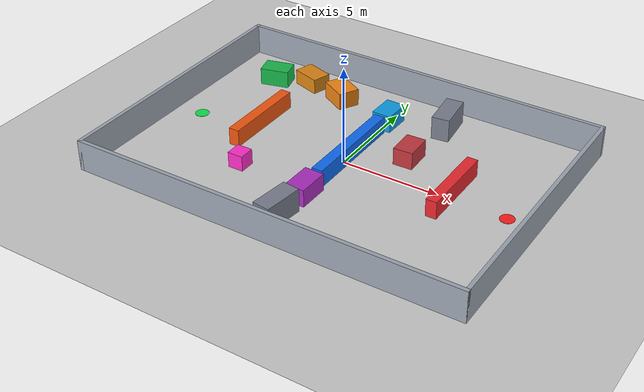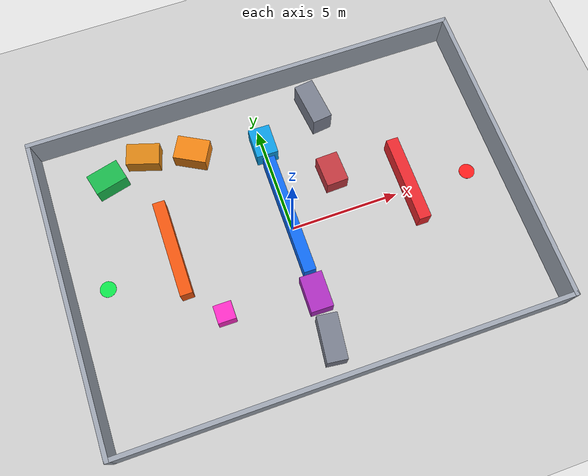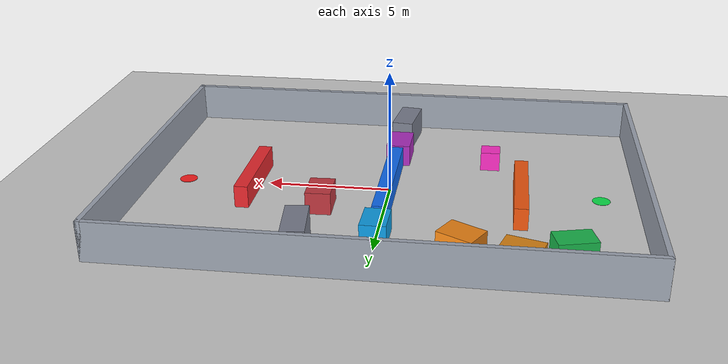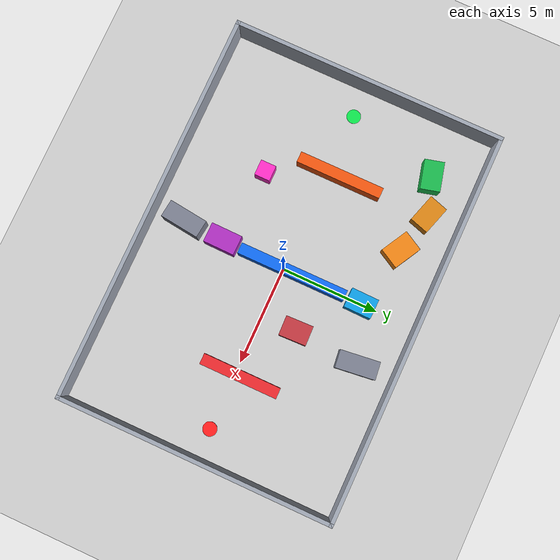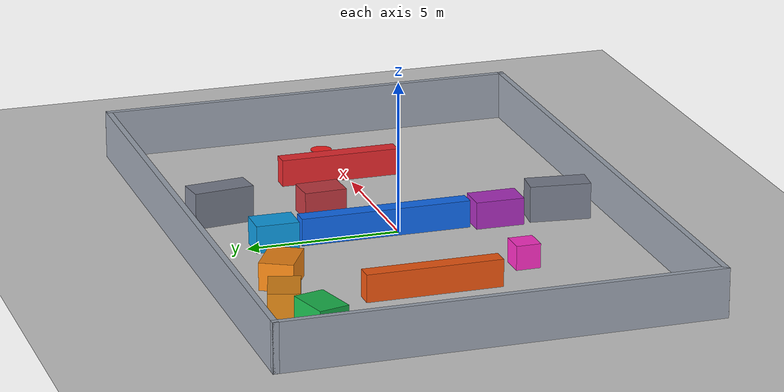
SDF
<sdf version='1.7'>
  <world name='indoor_obstacle_course_cross_scene_03_dynamic'>
    <model name='ground_plane'>
      <static>1</static>
      <link name='link'>
        <collision name='collision'>
          <geometry>
            <plane>
              <normal>0 0 1</normal>
              <size>100 100</size>
            </plane>
          </geometry>
          <surface>
            <friction>
              <ode>
                <mu>100</mu>
                <mu2>50</mu2>
              </ode>
              <torsional>
                <ode/>
              </torsional>
            </friction>
            <contact>
              <ode/>
            </contact>
            <bounce/>
          </surface>
          <max_contacts>10</max_contacts>
        </collision>
        <visual name='visual'>
          <cast_shadows>0</cast_shadows>
          <geometry>
            <plane>
              <normal>0 0 1</normal>
              <size>100 100</size>
            </plane>
          </geometry>
          <material>
            <script>
              <uri>file://media/materials/scripts/gazebo.material</uri>
              <name>Gazebo/Grey</name>
            </script>
          </material>
        </visual>
        <self_collide>0</self_collide>
        <enable_wind>0</enable_wind>
        <kinematic>0</kinematic>
      </link>
    </model>
    <light name='sun' type='directional'>
      <cast_shadows>1</cast_shadows>
      <pose>0 0 10 0 -0 0</pose>
      <diffuse>0.8 0.8 0.8 1</diffuse>
      <specular>0.2 0.2 0.2 1</specular>
      <attenuation>
        <range>1000</range>
        <constant>0.9</constant>
        <linear>0.01</linear>
        <quadratic>0.001</quadratic>
      </attenuation>
      <direction>-0.5 0.1 -0.9</direction>
      <spot>
        <inner_angle>0</inner_angle>
        <outer_angle>0</outer_angle>
        <falloff>0</falloff>
      </spot>
    </light>
    <scene>
      <ambient>0.65 0.65 0.65 1</ambient>
      <background>0.82 0.86 0.9 1</background>
      <shadows>1</shadows>
      <grid>0</grid>
    </scene>
    <physics type='ode'>
      <real_time_update_rate>1000</real_time_update_rate>
      <max_step_size>0.001</max_step_size>
      <real_time_factor>1</real_time_factor>
      <ode>
        <solver>
          <type>quick</type>
          <iters>150</iters>
          <sor>1.4</sor>
          <use_dynamic_moi_rescaling>0</use_dynamic_moi_rescaling>
        </solver>
        <constraints>
          <cfm>1e-05</cfm>
          <erp>0.2</erp>
          <contact_max_correcting_vel>2000</contact_max_correcting_vel>
          <contact_surface_layer>0.01</contact_surface_layer>
        </constraints>
      </ode>
    </physics>
    <plugin name='gazebo_ros_state' filename='libgazebo_ros_state.so'>
      <ros>
        <namespace>/gazebo</namespace>
        <remapping>model_states:=model_states</remapping>
      </ros>
      <update_rate>30.0</update_rate>
    </plugin>
    <model name='wall_north'>
      <static>1</static>
      <pose>0 7 0.8 0 -0 0</pose>
      <link name='link'>
        <collision name='collision'>
          <geometry>
            <box>
              <size>20.2 0.2 1.6</size>
            </box>
          </geometry>
          <max_contacts>10</max_contacts>
          <surface>
            <contact>
              <ode/>
            </contact>
            <bounce/>
            <friction>
              <torsional>
                <ode/>
              </torsional>
              <ode/>
            </friction>
          </surface>
        </collision>
        <visual name='visual'>
          <geometry>
            <box>
              <size>20.2 0.2 1.6</size>
            </box>
          </geometry>
          <material>
            <ambient>0.55 0.58 0.62 1</ambient>
            <diffuse>0.62 0.65 0.7 1</diffuse>
          </material>
        </visual>
        <self_collide>0</self_collide>
        <enable_wind>0</enable_wind>
        <kinematic>0</kinematic>
      </link>
    </model>
    <model name='wall_south'>
      <static>1</static>
      <pose>0 -7 0.8 0 -0 0</pose>
      <link name='link'>
        <collision name='collision'>
          <geometry>
            <box>
              <size>20.2 0.2 1.6</size>
            </box>
          </geometry>
          <max_contacts>10</max_contacts>
          <surface>
            <contact>
              <ode/>
            </contact>
            <bounce/>
            <friction>
              <torsional>
                <ode/>
              </torsional>
              <ode/>
            </friction>
          </surface>
        </collision>
        <visual name='visual'>
          <geometry>
            <box>
              <size>20.2 0.2 1.6</size>
            </box>
          </geometry>
          <material>
            <ambient>0.55 0.58 0.62 1</ambient>
            <diffuse>0.62 0.65 0.7 1</diffuse>
          </material>
        </visual>
        <self_collide>0</self_collide>
        <enable_wind>0</enable_wind>
        <kinematic>0</kinematic>
      </link>
    </model>
    <model name='wall_east'>
      <static>1</static>
      <pose>10 0 0.8 0 -0 0</pose>
      <link name='link'>
        <collision name='collision'>
          <geometry>
            <box>
              <size>0.2 14.2 1.6</size>
            </box>
          </geometry>
          <max_contacts>10</max_contacts>
          <surface>
            <contact>
              <ode/>
            </contact>
            <bounce/>
            <friction>
              <torsional>
                <ode/>
              </torsional>
              <ode/>
            </friction>
          </surface>
        </collision>
        <visual name='visual'>
          <geometry>
            <box>
              <size>0.2 14.2 1.6</size>
            </box>
          </geometry>
          <material>
            <ambient>0.55 0.58 0.62 1</ambient>
            <diffuse>0.62 0.65 0.7 1</diffuse>
          </material>
        </visual>
        <self_collide>0</self_collide>
        <enable_wind>0</enable_wind>
        <kinematic>0</kinematic>
      </link>
    </model>
    <model name='wall_west'>
      <static>1</static>
      <pose>-10 0 0.8 0 -0 0</pose>
      <link name='link'>
        <collision name='collision'>
          <geometry>
            <box>
              <size>0.2 14.2 1.6</size>
            </box>
          </geometry>
          <max_contacts>10</max_contacts>
          <surface>
            <contact>
              <ode/>
            </contact>
            <bounce/>
            <friction>
              <torsional>
                <ode/>
              </torsional>
              <ode/>
            </friction>
          </surface>
        </collision>
        <visual name='visual'>
          <geometry>
            <box>
              <size>0.2 14.2 1.6</size>
            </box>
          </geometry>
          <material>
            <ambient>0.55 0.58 0.62 1</ambient>
            <diffuse>0.62 0.65 0.7 1</diffuse>
          </material>
        </visual>
        <self_collide>0</self_collide>
        <enable_wind>0</enable_wind>
        <kinematic>0</kinematic>
      </link>
    </model>
    <model name='barrier_west'>
      <static>1</static>
      <pose>-5.29099 0.630801 0.45 0 -0 0</pose>
      <link name='link'>
        <collision name='collision'>
          <geometry>
            <box>
              <size>0.55 4.4 0.9</size>
            </box>
          </geometry>
          <max_contacts>10</max_contacts>
          <surface>
            <contact>
              <ode/>
            </contact>
            <bounce/>
            <friction>
              <torsional>
                <ode/>
              </torsional>
              <ode/>
            </friction>
          </surface>
        </collision>
        <visual name='visual'>
          <geometry>
            <box>
              <size>0.55 4.4 0.9</size>
            </box>
          </geometry>
          <material>
            <ambient>0.85 0.28 0.05 1</ambient>
            <diffuse>0.95 0.34 0.06 1</diffuse>
          </material>
        </visual>
        <self_collide>0</self_collide>
        <enable_wind>0</enable_wind>
        <kinematic>0</kinematic>
      </link>
    </model>
    <model name='barrier_center'>
      <static>1</static>
      <pose>-1.1e-05 0.483307 0.45 0 -0 1.5708</pose>
      <link name='link'>
        <collision name='collision'>
          <geometry>
            <box>
              <size>5.6 0.55 0.9</size>
            </box>
          </geometry>
          <max_contacts>10</max_contacts>
          <surface>
            <contact>
              <ode/>
            </contact>
            <bounce/>
            <friction>
              <torsional>
                <ode/>
              </torsional>
              <ode/>
            </friction>
          </surface>
        </collision>
        <visual name='visual'>
          <geometry>
            <box>
              <size>5.6 0.55 0.9</size>
            </box>
          </geometry>
          <material>
            <ambient>0.08 0.32 0.78 1</ambient>
            <diffuse>0.06 0.42 0.95 1</diffuse>
          </material>
        </visual>
        <self_collide>0</self_collide>
        <enable_wind>0</enable_wind>
        <kinematic>0</kinematic>
      </link>
    </model>
    <model name='barrier_east'>
      <static>1</static>
      <pose>5.58195 0.294014 0.45 0 -0 0</pose>
      <link name='link'>
        <collision name='collision'>
          <geometry>
            <box>
              <size>0.55 4 0.9</size>
            </box>
          </geometry>
          <max_contacts>10</max_contacts>
          <surface>
            <contact>
              <ode/>
            </contact>
            <bounce/>
            <friction>
              <torsional>
                <ode/>
              </torsional>
              <ode/>
            </friction>
          </surface>
        </collision>
        <visual name='visual'>
          <geometry>
            <box>
              <size>0.55 4 0.9</size>
            </box>
          </geometry>
          <material>
            <ambient>0.78 0.12 0.14 1</ambient>
            <diffuse>0.92 0.16 0.18 1</diffuse>
          </material>
        </visual>
        <self_collide>0</self_collide>
        <enable_wind>0</enable_wind>
        <kinematic>0</kinematic>
      </link>
    </model>
    <model name='crate_west_north'>
      <static>1</static>
      <pose>-7.14257 4.73551 0.45 0 -0 0.25</pose>
      <link name='link'>
        <collision name='collision'>
          <geometry>
            <box>
              <size>1.5 1 0.9</size>
            </box>
          </geometry>
          <max_contacts>10</max_contacts>
          <surface>
            <contact>
              <ode/>
            </contact>
            <bounce/>
            <friction>
              <torsional>
                <ode/>
              </torsional>
              <ode/>
            </friction>
          </surface>
        </collision>
        <visual name='visual'>
          <geometry>
            <box>
              <size>1.5 1 0.9</size>
            </box>
          </geometry>
          <material>
            <ambient>0.08 0.58 0.25 1</ambient>
            <diffuse>0.1 0.72 0.3 1</diffuse>
          </material>
        </visual>
        <self_collide>0</self_collide>
        <enable_wind>0</enable_wind>
        <kinematic>0</kinematic>
      </link>
    </model>
    <model name='crate_west_south'>
      <static>1</static>
      <pose>-5.32883 5.35858 0.4 0 0 -0.3</pose>
      <link name='link'>
        <collision name='collision'>
          <geometry>
            <box>
              <size>1.5 1 0.8</size>
            </box>
          </geometry>
          <max_contacts>10</max_contacts>
          <surface>
            <contact>
              <ode/>
            </contact>
            <bounce/>
            <friction>
              <torsional>
                <ode/>
              </torsional>
              <ode/>
            </friction>
          </surface>
        </collision>
        <visual name='visual'>
          <geometry>
            <box>
              <size>1.5 1 0.8</size>
            </box>
          </geometry>
          <material>
            <ambient>0.72 0.42 0.06 1</ambient>
            <diffuse>0.86 0.52 0.08 1</diffuse>
          </material>
        </visual>
        <self_collide>0</self_collide>
        <enable_wind>0</enable_wind>
        <kinematic>0</kinematic>
      </link>
    </model>
    <model name='crate_center_north'>
      <static>1</static>
      <pose>-3.16379 4.81413 0.45 0 0 -0.50381</pose>
      <link name='link'>
        <collision name='collision'>
          <geometry>
            <box>
              <size>1.5 1.1 0.9</size>
            </box>
          </geometry>
          <max_contacts>10</max_contacts>
          <surface>
            <contact>
              <ode/>
            </contact>
            <bounce/>
            <friction>
              <torsional>
                <ode/>
              </torsional>
              <ode/>
            </friction>
          </surface>
        </collision>
        <visual name='visual'>
          <geometry>
            <box>
              <size>1.5 1.1 0.9</size>
            </box>
          </geometry>
          <material>
            <ambient>0.78 0.4 0.06 1</ambient>
            <diffuse>0.94 0.52 0.08 1</diffuse>
          </material>
        </visual>
        <self_collide>0</self_collide>
        <enable_wind>0</enable_wind>
        <kinematic>0</kinematic>
      </link>
    </model>
    <model name='crate_center_south'>
      <static>1</static>
      <pose>-0.054593 -3.25013 0.45 0 0 -1.58389</pose>
      <link name='link'>
        <collision name='collision'>
          <geometry>
            <box>
              <size>1.6 1 0.9</size>
            </box>
          </geometry>
          <max_contacts>10</max_contacts>
          <surface>
            <contact>
              <ode/>
            </contact>
            <bounce/>
            <friction>
              <torsional>
                <ode/>
              </torsional>
              <ode/>
            </friction>
          </surface>
        </collision>
        <visual name='visual'>
          <geometry>
            <box>
              <size>1.6 1 0.9</size>
            </box>
          </geometry>
          <material>
            <ambient>0.52 0.12 0.58 1</ambient>
            <diffuse>0.68 0.18 0.75 1</diffuse>
          </material>
        </visual>
        <self_collide>0</self_collide>
        <enable_wind>0</enable_wind>
        <kinematic>0</kinematic>
      </link>
    </model>
    <model name='crate_east_north'>
      <static>1</static>
      <pose>0.013006 4.12922 0.45 0 0 -1.58615</pose>
      <link name='link'>
        <collision name='collision'>
          <geometry>
            <box>
              <size>1.4 1 0.9</size>
            </box>
          </geometry>
          <max_contacts>10</max_contacts>
          <surface>
            <contact>
              <ode/>
            </contact>
            <bounce/>
            <friction>
              <torsional>
                <ode/>
              </torsional>
              <ode/>
            </friction>
          </surface>
        </collision>
        <visual name='visual'>
          <geometry>
            <box>
              <size>1.4 1 0.9</size>
            </box>
          </geometry>
          <material>
            <ambient>0.04 0.48 0.72 1</ambient>
            <diffuse>0.05 0.62 0.9 1</diffuse>
          </material>
        </visual>
        <self_collide>0</self_collide>
        <enable_wind>0</enable_wind>
        <kinematic>0</kinematic>
      </link>
    </model>
    <model name='crate_east_south'>
      <static>1</static>
      <pose>2.51051 1.82022 0.45 0 0 -1.53615</pose>
      <link name='link'>
        <collision name='collision'>
          <geometry>
            <box>
              <size>1.4 1 0.9</size>
            </box>
          </geometry>
          <max_contacts>10</max_contacts>
          <surface>
            <contact>
              <ode/>
            </contact>
            <bounce/>
            <friction>
              <torsional>
                <ode/>
              </torsional>
              <ode/>
            </friction>
          </surface>
        </collision>
        <visual name='visual'>
          <geometry>
            <box>
              <size>1.4 1 0.9</size>
            </box>
          </geometry>
          <material>
            <ambient>0.58 0.16 0.2 1</ambient>
            <diffuse>0.76 0.22 0.25 1</diffuse>
          </material>
        </visual>
        <self_collide>0</self_collide>
        <enable_wind>0</enable_wind>
        <kinematic>0</kinematic>
      </link>
    </model>
    <model name='pillar_center_north'>
      <static>1</static>
      <pose>2.77604 5.14377 0.6 0 -0 0.12</pose>
      <link name='link'>
        <collision name='collision'>
          <geometry>
            <box>
              <size>0.9 2 1.2</size>
            </box>
          </geometry>
          <max_contacts>10</max_contacts>
          <surface>
            <contact>
              <ode/>
            </contact>
            <bounce/>
            <friction>
              <torsional>
                <ode/>
              </torsional>
              <ode/>
            </friction>
          </surface>
        </collision>
        <visual name='visual'>
          <geometry>
            <box>
              <size>0.9 2 1.2</size>
            </box>
          </geometry>
          <material>
            <ambient>0.36 0.36 0.4 1</ambient>
            <diffuse>0.48 0.5 0.56 1</diffuse>
          </material>
        </visual>
        <self_collide>0</self_collide>
        <enable_wind>0</enable_wind>
        <kinematic>0</kinematic>
      </link>
    </model>
    <model name='pillar_center_south'>
      <static>1</static>
      <pose>-0.132661 -5.33552 0.6 0 0 -0.12</pose>
      <link name='link'>
        <collision name='collision'>
          <geometry>
            <box>
              <size>0.9 2 1.2</size>
            </box>
          </geometry>
          <max_contacts>10</max_contacts>
          <surface>
            <contact>
              <ode/>
            </contact>
            <bounce/>
            <friction>
              <torsional>
                <ode/>
              </torsional>
              <ode/>
            </friction>
          </surface>
        </collision>
        <visual name='visual'>
          <geometry>
            <box>
              <size>0.9 2 1.2</size>
            </box>
          </geometry>
          <material>
            <ambient>0.36 0.36 0.4 1</ambient>
            <diffuse>0.48 0.5 0.56 1</diffuse>
          </material>
        </visual>
        <self_collide>0</self_collide>
        <enable_wind>0</enable_wind>
        <kinematic>0</kinematic>
      </link>
    </model>
    <model name='dynamic_obstacle'>
      <static>0</static>
      <pose>-4.0 -2.8 0.4 0 0 0</pose>
      <link name='link'>
        <inertial>
          <mass>8.0</mass>
          <inertia>
            <ixx>1.0666667</ixx>
            <iyy>1.0666667</iyy>
            <izz>1.0666667</izz>
          </inertia>
        </inertial>
        <collision name='collision'>
          <geometry>
            <box>
              <size>0.8 0.8 0.8</size>
            </box>
          </geometry>
          <max_contacts>10</max_contacts>
          <surface>
            <contact>
              <ode/>
            </contact>
            <bounce/>
            <friction>
              <torsional>
                <ode/>
              </torsional>
              <ode>
                <mu>80</mu>
                <mu2>40</mu2>
              </ode>
            </friction>
          </surface>
        </collision>
        <visual name='visual'>
          <geometry>
            <box>
              <size>0.8 0.8 0.8</size>
            </box>
          </geometry>
          <material>
            <ambient>0.92 0.12 0.72 1</ambient>
            <diffuse>1.0 0.18 0.78 1</diffuse>
          </material>
        </visual>
        <self_collide>0</self_collide>
        <enable_wind>0</enable_wind>
        <kinematic>1</kinematic>
      </link>
      <plugin name='dynamic_obstacle_planar_move'
              filename='libgazebo_ros_planar_move.so'>
        <ros>
          <namespace>/dynamic_obstacle</namespace>
          <remapping>cmd_vel:=cmd_vel</remapping>
        </ros>
        <update_rate>100</update_rate>
        <publish_rate>10</publish_rate>
        <publish_odom>false</publish_odom>
        <publish_odom_tf>false</publish_odom_tf>
        <odometry_frame>dynamic_obstacle_odom</odometry_frame>
        <robot_base_frame>link</robot_base_frame>
      </plugin>
    </model>
    <model name='start_marker'>
      <static>1</static>
      <pose>-8.5 0 0.006 0 -0 0</pose>
      <link name='link'>
        <visual name='visual'>
          <geometry>
            <cylinder>
              <radius>0.36</radius>
              <length>0.012</length>
            </cylinder>
          </geometry>
          <material>
            <ambient>0.05 0.75 0.25 1</ambient>
            <diffuse>0.05 0.9 0.3 1</diffuse>
          </material>
        </visual>
        <self_collide>0</self_collide>
        <enable_wind>0</enable_wind>
        <kinematic>0</kinematic>
      </link>
    </model>
    <model name='goal_marker'>
      <static>1</static>
      <pose>8.5 0 0.007 0 -0 0</pose>
      <link name='link'>
        <visual name='visual'>
          <geometry>
            <cylinder>
              <radius>0.36</radius>
              <length>0.014</length>
            </cylinder>
          </geometry>
          <material>
            <ambient>0.9 0.08 0.08 1</ambient>
            <diffuse>1 0.12 0.12 1</diffuse>
          </material>
        </visual>
        <self_collide>0</self_collide>
        <enable_wind>0</enable_wind>
        <kinematic>0</kinematic>
      </link>
    </model>
    <gui fullscreen='0'>
      <camera name='user_camera'>
        <pose>3.05045 -0.124734 26.2919 0 1.4898 1.5364</pose>
        <view_controller>orbit</view_controller>
        <projection_type>perspective</projection_type>
      </camera>
    </gui>
    <gravity>0 0 -9.8</gravity>
    <magnetic_field>6e-06 2.3e-05 -4.2e-05</magnetic_field>
    <atmosphere type='adiabatic'/>
    <audio>
      <device>default</device>
    </audio>
    <wind/>
    <spherical_coordinates>
      <surface_model>EARTH_WGS84</surface_model>
      <latitude_deg>0</latitude_deg>
      <longitude_deg>0</longitude_deg>
      <elevation>0</elevation>
      <heading_deg>0</heading_deg>
    </spherical_coordinates>
  </world>
</sdf>
